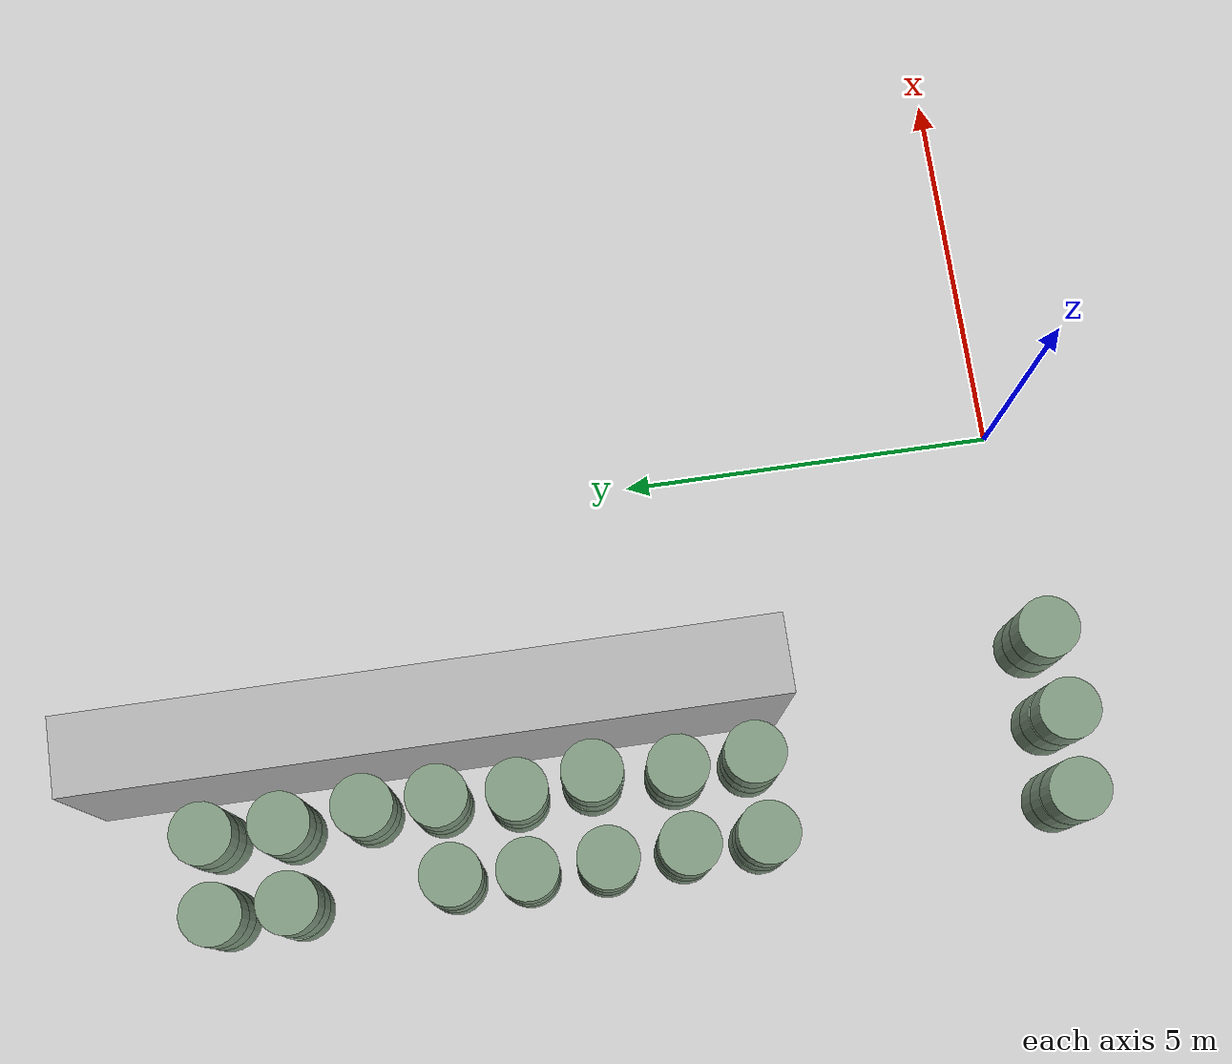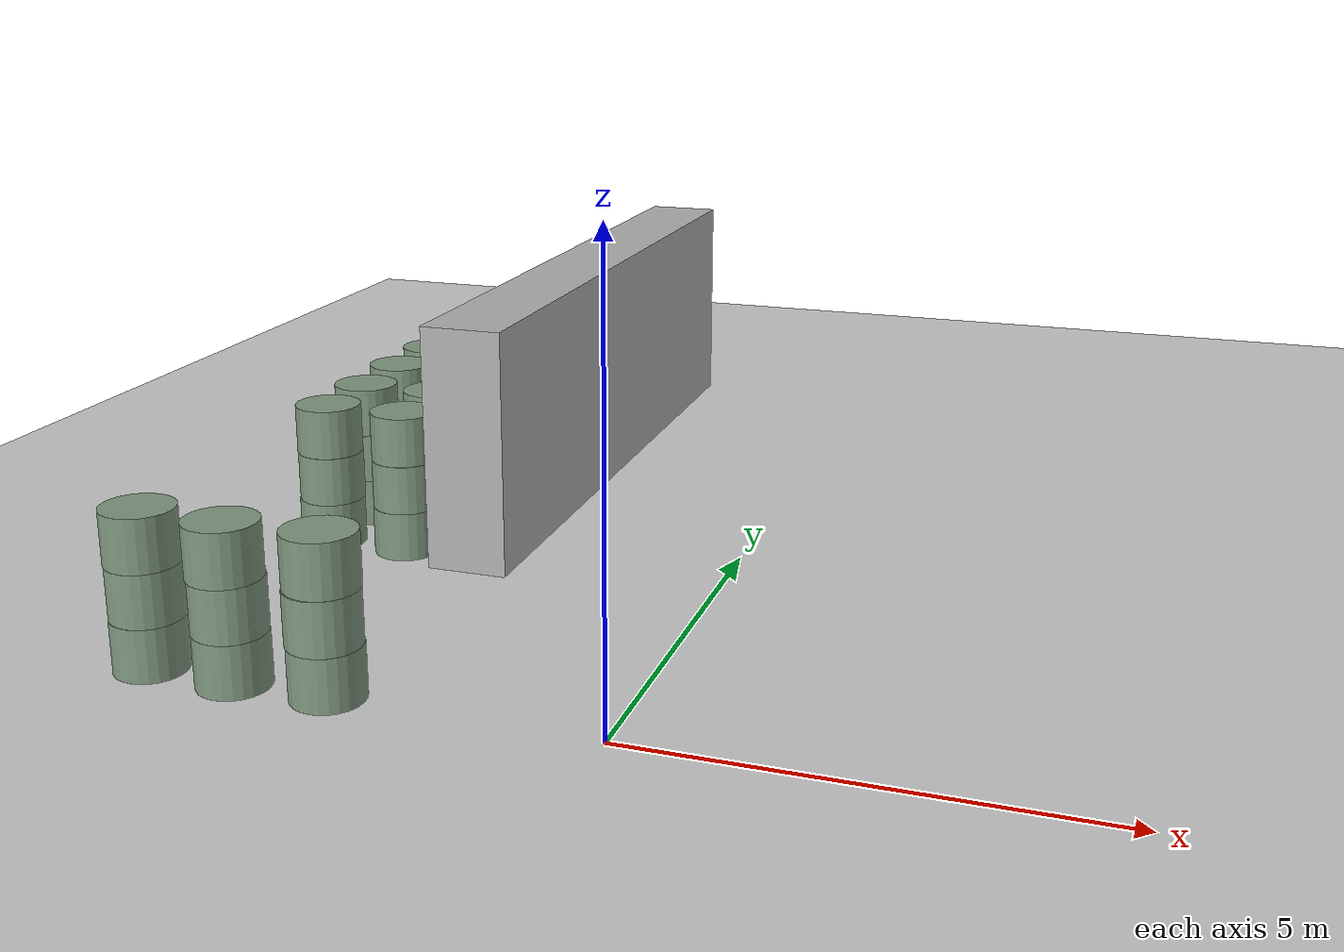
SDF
<sdf version="1.6">
 <world name="default">
  <include><uri>model://ground_plane</uri></include>
  <model name="wall_3">
   <pose>-3.0 8.0 1.5 0 -0 0</pose>
   <static>True</static>
   <link name="link">
    <inertial>
     <mass>100</mass>
     <inertia>
      <ixx>0.166667</ixx>
      <ixy>0</ixy>
      <ixz>0</ixz>
      <iyy>0.166667</iyy>
      <iyz>0</iyz>
      <izz>0.166667</izz>
     </inertia>
    </inertial>
    <collision name="collision"><geometry><box><size>1.0 9.0 3.0</size></box></geometry></collision>
    <visual name="visual">
     <geometry><box><size>1.0 9.0 3.0</size></box></geometry>
     <material><ambient>0.7 0.7 0.7 1</ambient><diffuse>0.7 0.7 0.7 1</diffuse></material>
    </visual>
   </link>
  </model>
  <model name="unit_cylinder_69">
   <pose>-5.04114360629 0.0396328951993 0.3 0 -0 0</pose>
   <static>True</static>
   <link name="link">
    <inertial>
     <mass>100</mass>
     <inertia><ixx>0.145833</ixx><ixy>0</ixy><ixz>0</ixz><iyy>0.145833</iyy><iyz>0</iyz><izz>0.125</izz></inertia>
    </inertial>
    <collision name="collision">
     <geometry><cylinder><radius>0.4</radius><length>0.6</length></cylinder></geometry>
     <max_contacts>100</max_contacts>
    </collision>
    <visual name="visual">
     <geometry><cylinder><radius>0.4</radius><length>0.6</length></cylinder></geometry>
     <material><ambient>0.5 0.6 0.5 1</ambient><diffuse>0.5 0.6 0.5 1</diffuse></material>
    </visual>
   </link>
  </model>
  <model name="unit_cylinder_70">
   <pose>-5.0385089359 0.0430911218473 0.9 0 -0 0</pose>
   <static>True</static>
   <link name="link">
    <inertial>
     <mass>100</mass>
     <inertia><ixx>0.145833</ixx><ixy>0</ixy><ixz>0</ixz><iyy>0.145833</iyy><iyz>0</iyz><izz>0.125</izz></inertia>
    </inertial>
    <collision name="collision">
     <geometry><cylinder><radius>0.4</radius><length>0.6</length></cylinder></geometry>
     <max_contacts>100</max_contacts>
    </collision>
    <visual name="visual">
     <geometry><cylinder><radius>0.4</radius><length>0.6</length></cylinder></geometry>
     <material><ambient>0.5 0.6 0.5 1</ambient><diffuse>0.5 0.6 0.5 1</diffuse></material>
    </visual>
   </link>
  </model>
  <model name="unit_cylinder_71">
   <pose>-5.03860613251 0.0325718342621 1.5 0 -0 0</pose>
   <static>True</static>
   <link name="link">
    <inertial>
     <mass>100</mass>
     <inertia><ixx>0.145833</ixx><ixy>0</ixy><ixz>0</ixz><iyy>0.145833</iyy><iyz>0</iyz><izz>0.125</izz></inertia>
    </inertial>
    <collision name="collision">
     <geometry><cylinder><radius>0.4</radius><length>0.6</length></cylinder></geometry>
     <max_contacts>100</max_contacts>
    </collision>
    <visual name="visual">
     <geometry><cylinder><radius>0.4</radius><length>0.6</length></cylinder></geometry>
     <material><ambient>0.5 0.6 0.5 1</ambient><diffuse>0.5 0.6 0.5 1</diffuse></material>
    </visual>
   </link>
  </model>
  <model name="unit_cylinder_72">
   <pose>-5.02395783474 3.97763615784 0.3 0 -0 0</pose>
   <static>True</static>
   <link name="link">
    <inertial>
     <mass>100</mass>
     <inertia><ixx>0.145833</ixx><ixy>0</ixy><ixz>0</ixz><iyy>0.145833</iyy><iyz>0</iyz><izz>0.125</izz></inertia>
    </inertial>
    <collision name="collision">
     <geometry><cylinder><radius>0.4</radius><length>0.6</length></cylinder></geometry>
     <max_contacts>100</max_contacts>
    </collision>
    <visual name="visual">
     <geometry><cylinder><radius>0.4</radius><length>0.6</length></cylinder></geometry>
     <material><ambient>0.5 0.6 0.5 1</ambient><diffuse>0.5 0.6 0.5 1</diffuse></material>
    </visual>
   </link>
  </model>
  <model name="unit_cylinder_73">
   <pose>-5.0112952598 3.96912325438 0.9 0 -0 0</pose>
   <static>True</static>
   <link name="link">
    <inertial>
     <mass>100</mass>
     <inertia><ixx>0.145833</ixx><ixy>0</ixy><ixz>0</ixz><iyy>0.145833</iyy><iyz>0</iyz><izz>0.125</izz></inertia>
    </inertial>
    <collision name="collision">
     <geometry><cylinder><radius>0.4</radius><length>0.6</length></cylinder></geometry>
     <max_contacts>100</max_contacts>
    </collision>
    <visual name="visual">
     <geometry><cylinder><radius>0.4</radius><length>0.6</length></cylinder></geometry>
     <material><ambient>0.5 0.6 0.5 1</ambient><diffuse>0.5 0.6 0.5 1</diffuse></material>
    </visual>
   </link>
  </model>
  <model name="unit_cylinder_74">
   <pose>-5.01808269304 3.97488479794 1.5 0 -0 0</pose>
   <static>True</static>
   <link name="link">
    <inertial>
     <mass>100</mass>
     <inertia><ixx>0.145833</ixx><ixy>0</ixy><ixz>0</ixz><iyy>0.145833</iyy><iyz>0</iyz><izz>0.125</izz></inertia>
    </inertial>
    <collision name="collision">
     <geometry><cylinder><radius>0.4</radius><length>0.6</length></cylinder></geometry>
     <max_contacts>100</max_contacts>
    </collision>
    <visual name="visual">
     <geometry><cylinder><radius>0.4</radius><length>0.6</length></cylinder></geometry>
     <material><ambient>0.5 0.6 0.5 1</ambient><diffuse>0.5 0.6 0.5 1</diffuse></material>
    </visual>
   </link>
  </model>
  <model name="unit_cylinder_75">
   <pose>-5.01107280844 4.97418538251 0.3 0 -0 0</pose>
   <static>True</static>
   <link name="link">
    <inertial>
     <mass>100</mass>
     <inertia><ixx>0.145833</ixx><ixy>0</ixy><ixz>0</ixz><iyy>0.145833</iyy><iyz>0</iyz><izz>0.125</izz></inertia>
    </inertial>
    <collision name="collision">
     <geometry><cylinder><radius>0.4</radius><length>0.6</length></cylinder></geometry>
     <max_contacts>100</max_contacts>
    </collision>
    <visual name="visual">
     <geometry><cylinder><radius>0.4</radius><length>0.6</length></cylinder></geometry>
     <material><ambient>0.5 0.6 0.5 1</ambient><diffuse>0.5 0.6 0.5 1</diffuse></material>
    </visual>
   </link>
  </model>
  <model name="unit_cylinder_76">
   <pose>-4.99987493836 4.96652738815 0.9 0 -0 0</pose>
   <static>True</static>
   <link name="link">
    <inertial>
     <mass>100</mass>
     <inertia><ixx>0.145833</ixx><ixy>0</ixy><ixz>0</ixz><iyy>0.145833</iyy><iyz>0</iyz><izz>0.125</izz></inertia>
    </inertial>
    <collision name="collision">
     <geometry><cylinder><radius>0.4</radius><length>0.6</length></cylinder></geometry>
     <max_contacts>100</max_contacts>
    </collision>
    <visual name="visual">
     <geometry><cylinder><radius>0.4</radius><length>0.6</length></cylinder></geometry>
     <material><ambient>0.5 0.6 0.5 1</ambient><diffuse>0.5 0.6 0.5 1</diffuse></material>
    </visual>
   </link>
  </model>
  <model name="unit_cylinder_77">
   <pose>-5.01359487051 4.97148383679 1.5 0 -0 0</pose>
   <static>True</static>
   <link name="link">
    <inertial>
     <mass>100</mass>
     <inertia><ixx>0.145833</ixx><ixy>0</ixy><ixz>0</ixz><iyy>0.145833</iyy><iyz>0</iyz><izz>0.125</izz></inertia>
    </inertial>
    <collision name="collision">
     <geometry><cylinder><radius>0.4</radius><length>0.6</length></cylinder></geometry>
     <max_contacts>100</max_contacts>
    </collision>
    <visual name="visual">
     <geometry><cylinder><radius>0.4</radius><length>0.6</length></cylinder></geometry>
     <material><ambient>0.5 0.6 0.5 1</ambient><diffuse>0.5 0.6 0.5 1</diffuse></material>
    </visual>
   </link>
  </model>
  <model name="unit_cylinder_78">
   <pose>-5.04220920862 6.00413918944 0.3 0 -0 0</pose>
   <static>True</static>
   <link name="link">
    <inertial>
     <mass>100</mass>
     <inertia><ixx>0.145833</ixx><ixy>0</ixy><ixz>0</ixz><iyy>0.145833</iyy><iyz>0</iyz><izz>0.125</izz></inertia>
    </inertial>
    <collision name="collision">
     <geometry><cylinder><radius>0.4</radius><length>0.6</length></cylinder></geometry>
     <max_contacts>100</max_contacts>
    </collision>
    <visual name="visual">
     <geometry><cylinder><radius>0.4</radius><length>0.6</length></cylinder></geometry>
     <material><ambient>0.5 0.6 0.5 1</ambient><diffuse>0.5 0.6 0.5 1</diffuse></material>
    </visual>
   </link>
  </model>
  <model name="unit_cylinder_79">
   <pose>-5.03765937902 6.00095302529 0.9 0 -0 0</pose>
   <static>True</static>
   <link name="link">
    <inertial>
     <mass>100</mass>
     <inertia><ixx>0.145833</ixx><ixy>0</ixy><ixz>0</ixz><iyy>0.145833</iyy><iyz>0</iyz><izz>0.125</izz></inertia>
    </inertial>
    <collision name="collision">
     <geometry><cylinder><radius>0.4</radius><length>0.6</length></cylinder></geometry>
     <max_contacts>100</max_contacts>
    </collision>
    <visual name="visual">
     <geometry><cylinder><radius>0.4</radius><length>0.6</length></cylinder></geometry>
     <material><ambient>0.5 0.6 0.5 1</ambient><diffuse>0.5 0.6 0.5 1</diffuse></material>
    </visual>
   </link>
  </model>
  <model name="unit_cylinder_80">
   <pose>-5.04133230467 6.00735976983 1.5 0 -0 0</pose>
   <static>True</static>
   <link name="link">
    <inertial>
     <mass>100</mass>
     <inertia><ixx>0.145833</ixx><ixy>0</ixy><ixz>0</ixz><iyy>0.145833</iyy><iyz>0</iyz><izz>0.125</izz></inertia>
    </inertial>
    <collision name="collision">
     <geometry><cylinder><radius>0.4</radius><length>0.6</length></cylinder></geometry>
     <max_contacts>100</max_contacts>
    </collision>
    <visual name="visual">
     <geometry><cylinder><radius>0.4</radius><length>0.6</length></cylinder></geometry>
     <material><ambient>0.5 0.6 0.5 1</ambient><diffuse>0.5 0.6 0.5 1</diffuse></material>
    </visual>
   </link>
  </model>
  <model name="unit_cylinder_81">
   <pose>-5.03010664066 7.01718729776 0.3 0 -0 0</pose>
   <static>True</static>
   <link name="link">
    <inertial>
     <mass>100</mass>
     <inertia><ixx>0.145833</ixx><ixy>0</ixy><ixz>0</ixz><iyy>0.145833</iyy><iyz>0</iyz><izz>0.125</izz></inertia>
    </inertial>
    <collision name="collision">
     <geometry><cylinder><radius>0.4</radius><length>0.6</length></cylinder></geometry>
     <max_contacts>100</max_contacts>
    </collision>
    <visual name="visual">
     <geometry><cylinder><radius>0.4</radius><length>0.6</length></cylinder></geometry>
     <material><ambient>0.5 0.6 0.5 1</ambient><diffuse>0.5 0.6 0.5 1</diffuse></material>
    </visual>
   </link>
  </model>
  <model name="unit_cylinder_82">
   <pose>-5.03981633358 7.02607606611 0.9 0 -0 0</pose>
   <static>True</static>
   <link name="link">
    <inertial>
     <mass>100</mass>
     <inertia><ixx>0.145833</ixx><ixy>0</ixy><ixz>0</ixz><iyy>0.145833</iyy><iyz>0</iyz><izz>0.125</izz></inertia>
    </inertial>
    <collision name="collision">
     <geometry><cylinder><radius>0.4</radius><length>0.6</length></cylinder></geometry>
     <max_contacts>100</max_contacts>
    </collision>
    <visual name="visual">
     <geometry><cylinder><radius>0.4</radius><length>0.6</length></cylinder></geometry>
     <material><ambient>0.5 0.6 0.5 1</ambient><diffuse>0.5 0.6 0.5 1</diffuse></material>
    </visual>
   </link>
  </model>
  <model name="unit_cylinder_83">
   <pose>-5.04005597777 7.02121911091 1.5 0 -0 0</pose>
   <static>True</static>
   <link name="link">
    <inertial>
     <mass>100</mass>
     <inertia><ixx>0.145833</ixx><ixy>0</ixy><ixz>0</ixz><iyy>0.145833</iyy><iyz>0</iyz><izz>0.125</izz></inertia>
    </inertial>
    <collision name="collision">
     <geometry><cylinder><radius>0.4</radius><length>0.6</length></cylinder></geometry>
     <max_contacts>100</max_contacts>
    </collision>
    <visual name="visual">
     <geometry><cylinder><radius>0.4</radius><length>0.6</length></cylinder></geometry>
     <material><ambient>0.5 0.6 0.5 1</ambient><diffuse>0.5 0.6 0.5 1</diffuse></material>
    </visual>
   </link>
  </model>
  <model name="unit_cylinder_84">
   <pose>-4.9819444517 7.98533801776 0.3 0 -0 0</pose>
   <static>True</static>
   <link name="link">
    <inertial>
     <mass>100</mass>
     <inertia><ixx>0.145833</ixx><ixy>0</ixy><ixz>0</ixz><iyy>0.145833</iyy><iyz>0</iyz><izz>0.125</izz></inertia>
    </inertial>
    <collision name="collision">
     <geometry><cylinder><radius>0.4</radius><length>0.6</length></cylinder></geometry>
     <max_contacts>100</max_contacts>
    </collision>
    <visual name="visual">
     <geometry><cylinder><radius>0.4</radius><length>0.6</length></cylinder></geometry>
     <material><ambient>0.5 0.6 0.5 1</ambient><diffuse>0.5 0.6 0.5 1</diffuse></material>
    </visual>
   </link>
  </model>
  <model name="unit_cylinder_85">
   <pose>-4.98300886565 7.98622696207 0.9 0 -0 0</pose>
   <static>True</static>
   <link name="link">
    <inertial>
     <mass>100</mass>
     <inertia><ixx>0.145833</ixx><ixy>0</ixy><ixz>0</ixz><iyy>0.145833</iyy><iyz>0</iyz><izz>0.125</izz></inertia>
    </inertial>
    <collision name="collision">
     <geometry><cylinder><radius>0.4</radius><length>0.6</length></cylinder></geometry>
     <max_contacts>100</max_contacts>
    </collision>
    <visual name="visual">
     <geometry><cylinder><radius>0.4</radius><length>0.6</length></cylinder></geometry>
     <material><ambient>0.5 0.6 0.5 1</ambient><diffuse>0.5 0.6 0.5 1</diffuse></material>
    </visual>
   </link>
  </model>
  <model name="unit_cylinder_86">
   <pose>-4.97020624978 7.97756819465 1.5 0 -0 0</pose>
   <static>True</static>
   <link name="link">
    <inertial>
     <mass>100</mass>
     <inertia><ixx>0.145833</ixx><ixy>0</ixy><ixz>0</ixz><iyy>0.145833</iyy><iyz>0</iyz><izz>0.125</izz></inertia>
    </inertial>
    <collision name="collision">
     <geometry><cylinder><radius>0.4</radius><length>0.6</length></cylinder></geometry>
     <max_contacts>100</max_contacts>
    </collision>
    <visual name="visual">
     <geometry><cylinder><radius>0.4</radius><length>0.6</length></cylinder></geometry>
     <material><ambient>0.5 0.6 0.5 1</ambient><diffuse>0.5 0.6 0.5 1</diffuse></material>
    </visual>
   </link>
  </model>
  <model name="unit_cylinder_90">
   <pose>-5.03683632683 10.0219089354 0.3 0 -0 0</pose>
   <static>True</static>
   <link name="link">
    <inertial>
     <mass>100</mass>
     <inertia><ixx>0.145833</ixx><ixy>0</ixy><ixz>0</ixz><iyy>0.145833</iyy><iyz>0</iyz><izz>0.125</izz></inertia>
    </inertial>
    <collision name="collision">
     <geometry><cylinder><radius>0.4</radius><length>0.6</length></cylinder></geometry>
     <max_contacts>100</max_contacts>
    </collision>
    <visual name="visual">
     <geometry><cylinder><radius>0.4</radius><length>0.6</length></cylinder></geometry>
     <material><ambient>0.5 0.6 0.5 1</ambient><diffuse>0.5 0.6 0.5 1</diffuse></material>
    </visual>
   </link>
  </model>
  <model name="unit_cylinder_91">
   <pose>-5.01732722564 10.0118044736 0.9 0 -0 0</pose>
   <static>True</static>
   <link name="link">
    <inertial>
     <mass>100</mass>
     <inertia><ixx>0.145833</ixx><ixy>0</ixy><ixz>0</ixz><iyy>0.145833</iyy><iyz>0</iyz><izz>0.125</izz></inertia>
    </inertial>
    <collision name="collision">
     <geometry><cylinder><radius>0.4</radius><length>0.6</length></cylinder></geometry>
     <max_contacts>100</max_contacts>
    </collision>
    <visual name="visual">
     <geometry><cylinder><radius>0.4</radius><length>0.6</length></cylinder></geometry>
     <material><ambient>0.5 0.6 0.5 1</ambient><diffuse>0.5 0.6 0.5 1</diffuse></material>
    </visual>
   </link>
  </model>
  <model name="unit_cylinder_92">
   <pose>-5.02623070871 10.0237548812 1.5 0 -0 0</pose>
   <static>True</static>
   <link name="link">
    <inertial>
     <mass>100</mass>
     <inertia><ixx>0.145833</ixx><ixy>0</ixy><ixz>0</ixz><iyy>0.145833</iyy><iyz>0</iyz><izz>0.125</izz></inertia>
    </inertial>
    <collision name="collision">
     <geometry><cylinder><radius>0.4</radius><length>0.6</length></cylinder></geometry>
     <max_contacts>100</max_contacts>
    </collision>
    <visual name="visual">
     <geometry><cylinder><radius>0.4</radius><length>0.6</length></cylinder></geometry>
     <material><ambient>0.5 0.6 0.5 1</ambient><diffuse>0.5 0.6 0.5 1</diffuse></material>
    </visual>
   </link>
  </model>
  <model name="unit_cylinder_93">
   <pose>-5.03066577566 10.9852768738 0.3 0 -0 0</pose>
   <static>True</static>
   <link name="link">
    <inertial>
     <mass>100</mass>
     <inertia><ixx>0.145833</ixx><ixy>0</ixy><ixz>0</ixz><iyy>0.145833</iyy><iyz>0</iyz><izz>0.125</izz></inertia>
    </inertial>
    <collision name="collision">
     <geometry><cylinder><radius>0.4</radius><length>0.6</length></cylinder></geometry>
     <max_contacts>100</max_contacts>
    </collision>
    <visual name="visual">
     <geometry><cylinder><radius>0.4</radius><length>0.6</length></cylinder></geometry>
     <material><ambient>0.5 0.6 0.5 1</ambient><diffuse>0.5 0.6 0.5 1</diffuse></material>
    </visual>
   </link>
  </model>
  <model name="unit_cylinder_94">
   <pose>-5.02592143564 10.978537179 0.9 0 -0 0</pose>
   <static>True</static>
   <link name="link">
    <inertial>
     <mass>100</mass>
     <inertia><ixx>0.145833</ixx><ixy>0</ixy><ixz>0</ixz><iyy>0.145833</iyy><iyz>0</iyz><izz>0.125</izz></inertia>
    </inertial>
    <collision name="collision">
     <geometry><cylinder><radius>0.4</radius><length>0.6</length></cylinder></geometry>
     <max_contacts>100</max_contacts>
    </collision>
    <visual name="visual">
     <geometry><cylinder><radius>0.4</radius><length>0.6</length></cylinder></geometry>
     <material><ambient>0.5 0.6 0.5 1</ambient><diffuse>0.5 0.6 0.5 1</diffuse></material>
    </visual>
   </link>
  </model>
  <model name="unit_cylinder_95">
   <pose>-5.02862292567 10.975894359 1.5 0 -0 0</pose>
   <static>True</static>
   <link name="link">
    <inertial>
     <mass>100</mass>
     <inertia><ixx>0.145833</ixx><ixy>0</ixy><ixz>0</ixz><iyy>0.145833</iyy><iyz>0</iyz><izz>0.125</izz></inertia>
    </inertial>
    <collision name="collision">
     <geometry><cylinder><radius>0.4</radius><length>0.6</length></cylinder></geometry>
     <max_contacts>100</max_contacts>
    </collision>
    <visual name="visual">
     <geometry><cylinder><radius>0.4</radius><length>0.6</length></cylinder></geometry>
     <material><ambient>0.5 0.6 0.5 1</ambient><diffuse>0.5 0.6 0.5 1</diffuse></material>
    </visual>
   </link>
  </model>
  <model name="unit_cylinder_111">
   <pose>-4.02010004548 -0.0161483760378 0.3 0 -0 0</pose>
   <static>True</static>
   <link name="link">
    <inertial>
     <mass>100</mass>
     <inertia><ixx>0.145833</ixx><ixy>0</ixy><ixz>0</ixz><iyy>0.145833</iyy><iyz>0</iyz><izz>0.125</izz></inertia>
    </inertial>
    <collision name="collision">
     <geometry><cylinder><radius>0.4</radius><length>0.6</length></cylinder></geometry>
     <max_contacts>100</max_contacts>
    </collision>
    <visual name="visual">
     <geometry><cylinder><radius>0.4</radius><length>0.6</length></cylinder></geometry>
     <material><ambient>0.5 0.6 0.5 1</ambient><diffuse>0.5 0.6 0.5 1</diffuse></material>
    </visual>
   </link>
  </model>
  <model name="unit_cylinder_112">
   <pose>-4.02403526061 -0.0161667216957 0.9 0 -0 0</pose>
   <static>True</static>
   <link name="link">
    <inertial>
     <mass>100</mass>
     <inertia><ixx>0.145833</ixx><ixy>0</ixy><ixz>0</ixz><iyy>0.145833</iyy><iyz>0</iyz><izz>0.125</izz></inertia>
    </inertial>
    <collision name="collision">
     <geometry><cylinder><radius>0.4</radius><length>0.6</length></cylinder></geometry>
     <max_contacts>100</max_contacts>
    </collision>
    <visual name="visual">
     <geometry><cylinder><radius>0.4</radius><length>0.6</length></cylinder></geometry>
     <material><ambient>0.5 0.6 0.5 1</ambient><diffuse>0.5 0.6 0.5 1</diffuse></material>
    </visual>
   </link>
  </model>
  <model name="unit_cylinder_113">
   <pose>-4.02867714746 -0.034698595469 1.5 0 -0 0</pose>
   <static>True</static>
   <link name="link">
    <inertial>
     <mass>100</mass>
     <inertia><ixx>0.145833</ixx><ixy>0</ixy><ixz>0</ixz><iyy>0.145833</iyy><iyz>0</iyz><izz>0.125</izz></inertia>
    </inertial>
    <collision name="collision">
     <geometry><cylinder><radius>0.4</radius><length>0.6</length></cylinder></geometry>
     <max_contacts>100</max_contacts>
    </collision>
    <visual name="visual">
     <geometry><cylinder><radius>0.4</radius><length>0.6</length></cylinder></geometry>
     <material><ambient>0.5 0.6 0.5 1</ambient><diffuse>0.5 0.6 0.5 1</diffuse></material>
    </visual>
   </link>
  </model>
  <model name="unit_cylinder_114">
   <pose>-4.00879355094 3.97560009404 0.3 0 -0 0</pose>
   <static>True</static>
   <link name="link">
    <inertial>
     <mass>100</mass>
     <inertia><ixx>0.145833</ixx><ixy>0</ixy><ixz>0</ixz><iyy>0.145833</iyy><iyz>0</iyz><izz>0.125</izz></inertia>
    </inertial>
    <collision name="collision">
     <geometry><cylinder><radius>0.4</radius><length>0.6</length></cylinder></geometry>
     <max_contacts>100</max_contacts>
    </collision>
    <visual name="visual">
     <geometry><cylinder><radius>0.4</radius><length>0.6</length></cylinder></geometry>
     <material><ambient>0.5 0.6 0.5 1</ambient><diffuse>0.5 0.6 0.5 1</diffuse></material>
    </visual>
   </link>
  </model>
  <model name="unit_cylinder_115">
   <pose>-4.00214174 3.9757547062 0.9 0 -0 0</pose>
   <static>True</static>
   <link name="link">
    <inertial>
     <mass>100</mass>
     <inertia><ixx>0.145833</ixx><ixy>0</ixy><ixz>0</ixz><iyy>0.145833</iyy><iyz>0</iyz><izz>0.125</izz></inertia>
    </inertial>
    <collision name="collision">
     <geometry><cylinder><radius>0.4</radius><length>0.6</length></cylinder></geometry>
     <max_contacts>100</max_contacts>
    </collision>
    <visual name="visual">
     <geometry><cylinder><radius>0.4</radius><length>0.6</length></cylinder></geometry>
     <material><ambient>0.5 0.6 0.5 1</ambient><diffuse>0.5 0.6 0.5 1</diffuse></material>
    </visual>
   </link>
  </model>
  <model name="unit_cylinder_116">
   <pose>-4.0060734228 3.98658250313 1.5 0 -0 0</pose>
   <static>True</static>
   <link name="link">
    <inertial>
     <mass>100</mass>
     <inertia><ixx>0.145833</ixx><ixy>0</ixy><ixz>0</ixz><iyy>0.145833</iyy><iyz>0</iyz><izz>0.125</izz></inertia>
    </inertial>
    <collision name="collision">
     <geometry><cylinder><radius>0.4</radius><length>0.6</length></cylinder></geometry>
     <max_contacts>100</max_contacts>
    </collision>
    <visual name="visual">
     <geometry><cylinder><radius>0.4</radius><length>0.6</length></cylinder></geometry>
     <material><ambient>0.5 0.6 0.5 1</ambient><diffuse>0.5 0.6 0.5 1</diffuse></material>
    </visual>
   </link>
  </model>
  <model name="unit_cylinder_117">
   <pose>-4.03068708435 4.95653396305 0.3 0 -0 0</pose>
   <static>True</static>
   <link name="link">
    <inertial>
     <mass>100</mass>
     <inertia><ixx>0.145833</ixx><ixy>0</ixy><ixz>0</ixz><iyy>0.145833</iyy><iyz>0</iyz><izz>0.125</izz></inertia>
    </inertial>
    <collision name="collision">
     <geometry><cylinder><radius>0.4</radius><length>0.6</length></cylinder></geometry>
     <max_contacts>100</max_contacts>
    </collision>
    <visual name="visual">
     <geometry><cylinder><radius>0.4</radius><length>0.6</length></cylinder></geometry>
     <material><ambient>0.5 0.6 0.5 1</ambient><diffuse>0.5 0.6 0.5 1</diffuse></material>
    </visual>
   </link>
  </model>
  <model name="unit_cylinder_118">
   <pose>-4.03866730399 4.97232222635 0.9 0 -0 0</pose>
   <static>True</static>
   <link name="link">
    <inertial>
     <mass>100</mass>
     <inertia><ixx>0.145833</ixx><ixy>0</ixy><ixz>0</ixz><iyy>0.145833</iyy><iyz>0</iyz><izz>0.125</izz></inertia>
    </inertial>
    <collision name="collision">
     <geometry><cylinder><radius>0.4</radius><length>0.6</length></cylinder></geometry>
     <max_contacts>100</max_contacts>
    </collision>
    <visual name="visual">
     <geometry><cylinder><radius>0.4</radius><length>0.6</length></cylinder></geometry>
     <material><ambient>0.5 0.6 0.5 1</ambient><diffuse>0.5 0.6 0.5 1</diffuse></material>
    </visual>
   </link>
  </model>
  <model name="unit_cylinder_119">
   <pose>-4.03879892126 4.97351695107 1.5 0 -0 0</pose>
   <static>True</static>
   <link name="link">
    <inertial>
     <mass>100</mass>
     <inertia><ixx>0.145833</ixx><ixy>0</ixy><ixz>0</ixz><iyy>0.145833</iyy><iyz>0</iyz><izz>0.125</izz></inertia>
    </inertial>
    <collision name="collision">
     <geometry><cylinder><radius>0.4</radius><length>0.6</length></cylinder></geometry>
     <max_contacts>100</max_contacts>
    </collision>
    <visual name="visual">
     <geometry><cylinder><radius>0.4</radius><length>0.6</length></cylinder></geometry>
     <material><ambient>0.5 0.6 0.5 1</ambient><diffuse>0.5 0.6 0.5 1</diffuse></material>
    </visual>
   </link>
  </model>
  <model name="unit_cylinder_120">
   <pose>-3.95872355446 6.04950368858 0.3 0 -0 0</pose>
   <static>True</static>
   <link name="link">
    <inertial>
     <mass>100</mass>
     <inertia><ixx>0.145833</ixx><ixy>0</ixy><ixz>0</ixz><iyy>0.145833</iyy><iyz>0</iyz><izz>0.125</izz></inertia>
    </inertial>
    <collision name="collision">
     <geometry><cylinder><radius>0.4</radius><length>0.6</length></cylinder></geometry>
     <max_contacts>100</max_contacts>
    </collision>
    <visual name="visual">
     <geometry><cylinder><radius>0.4</radius><length>0.6</length></cylinder></geometry>
     <material><ambient>0.5 0.6 0.5 1</ambient><diffuse>0.5 0.6 0.5 1</diffuse></material>
    </visual>
   </link>
  </model>
  <model name="unit_cylinder_121">
   <pose>-3.94550436717 6.03818418575 0.9 0 -0 0</pose>
   <static>True</static>
   <link name="link">
    <inertial>
     <mass>100</mass>
     <inertia><ixx>0.145833</ixx><ixy>0</ixy><ixz>0</ixz><iyy>0.145833</iyy><iyz>0</iyz><izz>0.125</izz></inertia>
    </inertial>
    <collision name="collision">
     <geometry><cylinder><radius>0.4</radius><length>0.6</length></cylinder></geometry>
     <max_contacts>100</max_contacts>
    </collision>
    <visual name="visual">
     <geometry><cylinder><radius>0.4</radius><length>0.6</length></cylinder></geometry>
     <material><ambient>0.5 0.6 0.5 1</ambient><diffuse>0.5 0.6 0.5 1</diffuse></material>
    </visual>
   </link>
  </model>
  <model name="unit_cylinder_122">
   <pose>-3.94768954401 6.05604327875 1.5 0 -0 0</pose>
   <static>True</static>
   <link name="link">
    <inertial>
     <mass>100</mass>
     <inertia><ixx>0.145833</ixx><ixy>0</ixy><ixz>0</ixz><iyy>0.145833</iyy><iyz>0</iyz><izz>0.125</izz></inertia>
    </inertial>
    <collision name="collision">
     <geometry><cylinder><radius>0.4</radius><length>0.6</length></cylinder></geometry>
     <max_contacts>100</max_contacts>
    </collision>
    <visual name="visual">
     <geometry><cylinder><radius>0.4</radius><length>0.6</length></cylinder></geometry>
     <material><ambient>0.5 0.6 0.5 1</ambient><diffuse>0.5 0.6 0.5 1</diffuse></material>
    </visual>
   </link>
  </model>
  <model name="unit_cylinder_123">
   <pose>-4.03216439485 7.02967947436 0.3 0 -0 0</pose>
   <static>True</static>
   <link name="link">
    <inertial>
     <mass>100</mass>
     <inertia><ixx>0.145833</ixx><ixy>0</ixy><ixz>0</ixz><iyy>0.145833</iyy><iyz>0</iyz><izz>0.125</izz></inertia>
    </inertial>
    <collision name="collision">
     <geometry><cylinder><radius>0.4</radius><length>0.6</length></cylinder></geometry>
     <max_contacts>100</max_contacts>
    </collision>
    <visual name="visual">
     <geometry><cylinder><radius>0.4</radius><length>0.6</length></cylinder></geometry>
     <material><ambient>0.5 0.6 0.5 1</ambient><diffuse>0.5 0.6 0.5 1</diffuse></material>
    </visual>
   </link>
  </model>
  <model name="unit_cylinder_124">
   <pose>-4.02825834118 7.03095093392 0.9 0 -0 0</pose>
   <static>True</static>
   <link name="link">
    <inertial>
     <mass>100</mass>
     <inertia><ixx>0.145833</ixx><ixy>0</ixy><ixz>0</ixz><iyy>0.145833</iyy><iyz>0</iyz><izz>0.125</izz></inertia>
    </inertial>
    <collision name="collision">
     <geometry><cylinder><radius>0.4</radius><length>0.6</length></cylinder></geometry>
     <max_contacts>100</max_contacts>
    </collision>
    <visual name="visual">
     <geometry><cylinder><radius>0.4</radius><length>0.6</length></cylinder></geometry>
     <material><ambient>0.5 0.6 0.5 1</ambient><diffuse>0.5 0.6 0.5 1</diffuse></material>
    </visual>
   </link>
  </model>
  <model name="unit_cylinder_125">
   <pose>-4.04421555991 7.02451029115 1.5 0 -0 0</pose>
   <static>True</static>
   <link name="link">
    <inertial>
     <mass>100</mass>
     <inertia><ixx>0.145833</ixx><ixy>0</ixy><ixz>0</ixz><iyy>0.145833</iyy><iyz>0</iyz><izz>0.125</izz></inertia>
    </inertial>
    <collision name="collision">
     <geometry><cylinder><radius>0.4</radius><length>0.6</length></cylinder></geometry>
     <max_contacts>100</max_contacts>
    </collision>
    <visual name="visual">
     <geometry><cylinder><radius>0.4</radius><length>0.6</length></cylinder></geometry>
     <material><ambient>0.5 0.6 0.5 1</ambient><diffuse>0.5 0.6 0.5 1</diffuse></material>
    </visual>
   </link>
  </model>
  <model name="unit_cylinder_126">
   <pose>-3.96724229326 8.03478245388 0.3 0 -0 0</pose>
   <static>True</static>
   <link name="link">
    <inertial>
     <mass>100</mass>
     <inertia><ixx>0.145833</ixx><ixy>0</ixy><ixz>0</ixz><iyy>0.145833</iyy><iyz>0</iyz><izz>0.125</izz></inertia>
    </inertial>
    <collision name="collision">
     <geometry><cylinder><radius>0.4</radius><length>0.6</length></cylinder></geometry>
     <max_contacts>100</max_contacts>
    </collision>
    <visual name="visual">
     <geometry><cylinder><radius>0.4</radius><length>0.6</length></cylinder></geometry>
     <material><ambient>0.5 0.6 0.5 1</ambient><diffuse>0.5 0.6 0.5 1</diffuse></material>
    </visual>
   </link>
  </model>
  <model name="unit_cylinder_127">
   <pose>-3.96104761816 8.04472862017 0.9 0 -0 0</pose>
   <static>True</static>
   <link name="link">
    <inertial>
     <mass>100</mass>
     <inertia><ixx>0.145833</ixx><ixy>0</ixy><ixz>0</ixz><iyy>0.145833</iyy><iyz>0</iyz><izz>0.125</izz></inertia>
    </inertial>
    <collision name="collision">
     <geometry><cylinder><radius>0.4</radius><length>0.6</length></cylinder></geometry>
     <max_contacts>100</max_contacts>
    </collision>
    <visual name="visual">
     <geometry><cylinder><radius>0.4</radius><length>0.6</length></cylinder></geometry>
     <material><ambient>0.5 0.6 0.5 1</ambient><diffuse>0.5 0.6 0.5 1</diffuse></material>
    </visual>
   </link>
  </model>
  <model name="unit_cylinder_128">
   <pose>-3.97638376388 8.03172858697 1.5 0 -0 0</pose>
   <static>True</static>
   <link name="link">
    <inertial>
     <mass>100</mass>
     <inertia><ixx>0.145833</ixx><ixy>0</ixy><ixz>0</ixz><iyy>0.145833</iyy><iyz>0</iyz><izz>0.125</izz></inertia>
    </inertial>
    <collision name="collision">
     <geometry><cylinder><radius>0.4</radius><length>0.6</length></cylinder></geometry>
     <max_contacts>100</max_contacts>
    </collision>
    <visual name="visual">
     <geometry><cylinder><radius>0.4</radius><length>0.6</length></cylinder></geometry>
     <material><ambient>0.5 0.6 0.5 1</ambient><diffuse>0.5 0.6 0.5 1</diffuse></material>
    </visual>
   </link>
  </model>
  <model name="unit_cylinder_129">
   <pose>-3.96354135383 8.97481504056 0.3 0 -0 0</pose>
   <static>True</static>
   <link name="link">
    <inertial>
     <mass>100</mass>
     <inertia><ixx>0.145833</ixx><ixy>0</ixy><ixz>0</ixz><iyy>0.145833</iyy><iyz>0</iyz><izz>0.125</izz></inertia>
    </inertial>
    <collision name="collision">
     <geometry><cylinder><radius>0.4</radius><length>0.6</length></cylinder></geometry>
     <max_contacts>100</max_contacts>
    </collision>
    <visual name="visual">
     <geometry><cylinder><radius>0.4</radius><length>0.6</length></cylinder></geometry>
     <material><ambient>0.5 0.6 0.5 1</ambient><diffuse>0.5 0.6 0.5 1</diffuse></material>
    </visual>
   </link>
  </model>
  <model name="unit_cylinder_130">
   <pose>-3.95790643218 8.97122525432 0.9 0 -0 0</pose>
   <static>True</static>
   <link name="link">
    <inertial>
     <mass>100</mass>
     <inertia><ixx>0.145833</ixx><ixy>0</ixy><ixz>0</ixz><iyy>0.145833</iyy><iyz>0</iyz><izz>0.125</izz></inertia>
    </inertial>
    <collision name="collision">
     <geometry><cylinder><radius>0.4</radius><length>0.6</length></cylinder></geometry>
     <max_contacts>100</max_contacts>
    </collision>
    <visual name="visual">
     <geometry><cylinder><radius>0.4</radius><length>0.6</length></cylinder></geometry>
     <material><ambient>0.5 0.6 0.5 1</ambient><diffuse>0.5 0.6 0.5 1</diffuse></material>
    </visual>
   </link>
  </model>
  <model name="unit_cylinder_131">
   <pose>-3.96519478105 8.96783393094 1.5 0 -0 0</pose>
   <static>True</static>
   <link name="link">
    <inertial>
     <mass>100</mass>
     <inertia><ixx>0.145833</ixx><ixy>0</ixy><ixz>0</ixz><iyy>0.145833</iyy><iyz>0</iyz><izz>0.125</izz></inertia>
    </inertial>
    <collision name="collision">
     <geometry><cylinder><radius>0.4</radius><length>0.6</length></cylinder></geometry>
     <max_contacts>100</max_contacts>
    </collision>
    <visual name="visual">
     <geometry><cylinder><radius>0.4</radius><length>0.6</length></cylinder></geometry>
     <material><ambient>0.5 0.6 0.5 1</ambient><diffuse>0.5 0.6 0.5 1</diffuse></material>
    </visual>
   </link>
  </model>
  <model name="unit_cylinder_132">
   <pose>-4.03840940895 10.0145058852 0.3 0 -0 0</pose>
   <static>True</static>
   <link name="link">
    <inertial>
     <mass>100</mass>
     <inertia><ixx>0.145833</ixx><ixy>0</ixy><ixz>0</ixz><iyy>0.145833</iyy><iyz>0</iyz><izz>0.125</izz></inertia>
    </inertial>
    <collision name="collision">
     <geometry><cylinder><radius>0.4</radius><length>0.6</length></cylinder></geometry>
     <max_contacts>100</max_contacts>
    </collision>
    <visual name="visual">
     <geometry><cylinder><radius>0.4</radius><length>0.6</length></cylinder></geometry>
     <material><ambient>0.5 0.6 0.5 1</ambient><diffuse>0.5 0.6 0.5 1</diffuse></material>
    </visual>
   </link>
  </model>
  <model name="unit_cylinder_133">
   <pose>-4.0325045532 10.0238147529 0.9 0 -0 0</pose>
   <static>True</static>
   <link name="link">
    <inertial>
     <mass>100</mass>
     <inertia><ixx>0.145833</ixx><ixy>0</ixy><ixz>0</ixz><iyy>0.145833</iyy><iyz>0</iyz><izz>0.125</izz></inertia>
    </inertial>
    <collision name="collision">
     <geometry><cylinder><radius>0.4</radius><length>0.6</length></cylinder></geometry>
     <max_contacts>100</max_contacts>
    </collision>
    <visual name="visual">
     <geometry><cylinder><radius>0.4</radius><length>0.6</length></cylinder></geometry>
     <material><ambient>0.5 0.6 0.5 1</ambient><diffuse>0.5 0.6 0.5 1</diffuse></material>
    </visual>
   </link>
  </model>
  <model name="unit_cylinder_134">
   <pose>-4.03690316783 10.0195323593 1.5 0 -0 0</pose>
   <static>True</static>
   <link name="link">
    <inertial>
     <mass>100</mass>
     <inertia><ixx>0.145833</ixx><ixy>0</ixy><ixz>0</ixz><iyy>0.145833</iyy><iyz>0</iyz><izz>0.125</izz></inertia>
    </inertial>
    <collision name="collision">
     <geometry><cylinder><radius>0.4</radius><length>0.6</length></cylinder></geometry>
     <max_contacts>100</max_contacts>
    </collision>
    <visual name="visual">
     <geometry><cylinder><radius>0.4</radius><length>0.6</length></cylinder></geometry>
     <material><ambient>0.5 0.6 0.5 1</ambient><diffuse>0.5 0.6 0.5 1</diffuse></material>
    </visual>
   </link>
  </model>
  <model name="unit_cylinder_135">
   <pose>-4.02223456187 10.9983804065 0.3 0 -0 0</pose>
   <static>True</static>
   <link name="link">
    <inertial>
     <mass>100</mass>
     <inertia><ixx>0.145833</ixx><ixy>0</ixy><ixz>0</ixz><iyy>0.145833</iyy><iyz>0</iyz><izz>0.125</izz></inertia>
    </inertial>
    <collision name="collision">
     <geometry><cylinder><radius>0.4</radius><length>0.6</length></cylinder></geometry>
     <max_contacts>100</max_contacts>
    </collision>
    <visual name="visual">
     <geometry><cylinder><radius>0.4</radius><length>0.6</length></cylinder></geometry>
     <material><ambient>0.5 0.6 0.5 1</ambient><diffuse>0.5 0.6 0.5 1</diffuse></material>
    </visual>
   </link>
  </model>
  <model name="unit_cylinder_136">
   <pose>-4.03240415016 11.0063649129 0.9 0 -0 0</pose>
   <static>True</static>
   <link name="link">
    <inertial>
     <mass>100</mass>
     <inertia><ixx>0.145833</ixx><ixy>0</ixy><ixz>0</ixz><iyy>0.145833</iyy><iyz>0</iyz><izz>0.125</izz></inertia>
    </inertial>
    <collision name="collision">
     <geometry><cylinder><radius>0.4</radius><length>0.6</length></cylinder></geometry>
     <max_contacts>100</max_contacts>
    </collision>
    <visual name="visual">
     <geometry><cylinder><radius>0.4</radius><length>0.6</length></cylinder></geometry>
     <material><ambient>0.5 0.6 0.5 1</ambient><diffuse>0.5 0.6 0.5 1</diffuse></material>
    </visual>
   </link>
  </model>
  <model name="unit_cylinder_137">
   <pose>-4.02847844873 10.9989970096 1.5 0 -0 0</pose>
   <static>True</static>
   <link name="link">
    <inertial>
     <mass>100</mass>
     <inertia><ixx>0.145833</ixx><ixy>0</ixy><ixz>0</ixz><iyy>0.145833</iyy><iyz>0</iyz><izz>0.125</izz></inertia>
    </inertial>
    <collision name="collision">
     <geometry><cylinder><radius>0.4</radius><length>0.6</length></cylinder></geometry>
     <max_contacts>100</max_contacts>
    </collision>
    <visual name="visual">
     <geometry><cylinder><radius>0.4</radius><length>0.6</length></cylinder></geometry>
     <material><ambient>0.5 0.6 0.5 1</ambient><diffuse>0.5 0.6 0.5 1</diffuse></material>
    </visual>
   </link>
  </model>
  <model name="unit_cylinder_153">
   <pose>-2.96091816802 0.0199961330105 0.3 0 -0 0</pose>
   <static>True</static>
   <link name="link">
    <inertial>
     <mass>100</mass>
     <inertia><ixx>0.145833</ixx><ixy>0</ixy><ixz>0</ixz><iyy>0.145833</iyy><iyz>0</iyz><izz>0.125</izz></inertia>
    </inertial>
    <collision name="collision">
     <geometry><cylinder><radius>0.4</radius><length>0.6</length></cylinder></geometry>
     <max_contacts>100</max_contacts>
    </collision>
    <visual name="visual">
     <geometry><cylinder><radius>0.4</radius><length>0.6</length></cylinder></geometry>
     <material><ambient>0.5 0.6 0.5 1</ambient><diffuse>0.5 0.6 0.5 1</diffuse></material>
    </visual>
   </link>
  </model>
  <model name="unit_cylinder_154">
   <pose>-2.97040142308 0.0179003685559 0.9 0 -0 0</pose>
   <static>True</static>
   <link name="link">
    <inertial>
     <mass>100</mass>
     <inertia><ixx>0.145833</ixx><ixy>0</ixy><ixz>0</ixz><iyy>0.145833</iyy><iyz>0</iyz><izz>0.125</izz></inertia>
    </inertial>
    <collision name="collision">
     <geometry><cylinder><radius>0.4</radius><length>0.6</length></cylinder></geometry>
     <max_contacts>100</max_contacts>
    </collision>
    <visual name="visual">
     <geometry><cylinder><radius>0.4</radius><length>0.6</length></cylinder></geometry>
     <material><ambient>0.5 0.6 0.5 1</ambient><diffuse>0.5 0.6 0.5 1</diffuse></material>
    </visual>
   </link>
  </model>
  <model name="unit_cylinder_155">
   <pose>-2.9701265902 0.030024853997 1.5 0 -0 0</pose>
   <static>True</static>
   <link name="link">
    <inertial>
     <mass>100</mass>
     <inertia><ixx>0.145833</ixx><ixy>0</ixy><ixz>0</ixz><iyy>0.145833</iyy><iyz>0</iyz><izz>0.125</izz></inertia>
    </inertial>
    <collision name="collision">
     <geometry><cylinder><radius>0.4</radius><length>0.6</length></cylinder></geometry>
     <max_contacts>100</max_contacts>
    </collision>
    <visual name="visual">
     <geometry><cylinder><radius>0.4</radius><length>0.6</length></cylinder></geometry>
     <material><ambient>0.5 0.6 0.5 1</ambient><diffuse>0.5 0.6 0.5 1</diffuse></material>
    </visual>
   </link>
  </model>
 </world>
</sdf>
